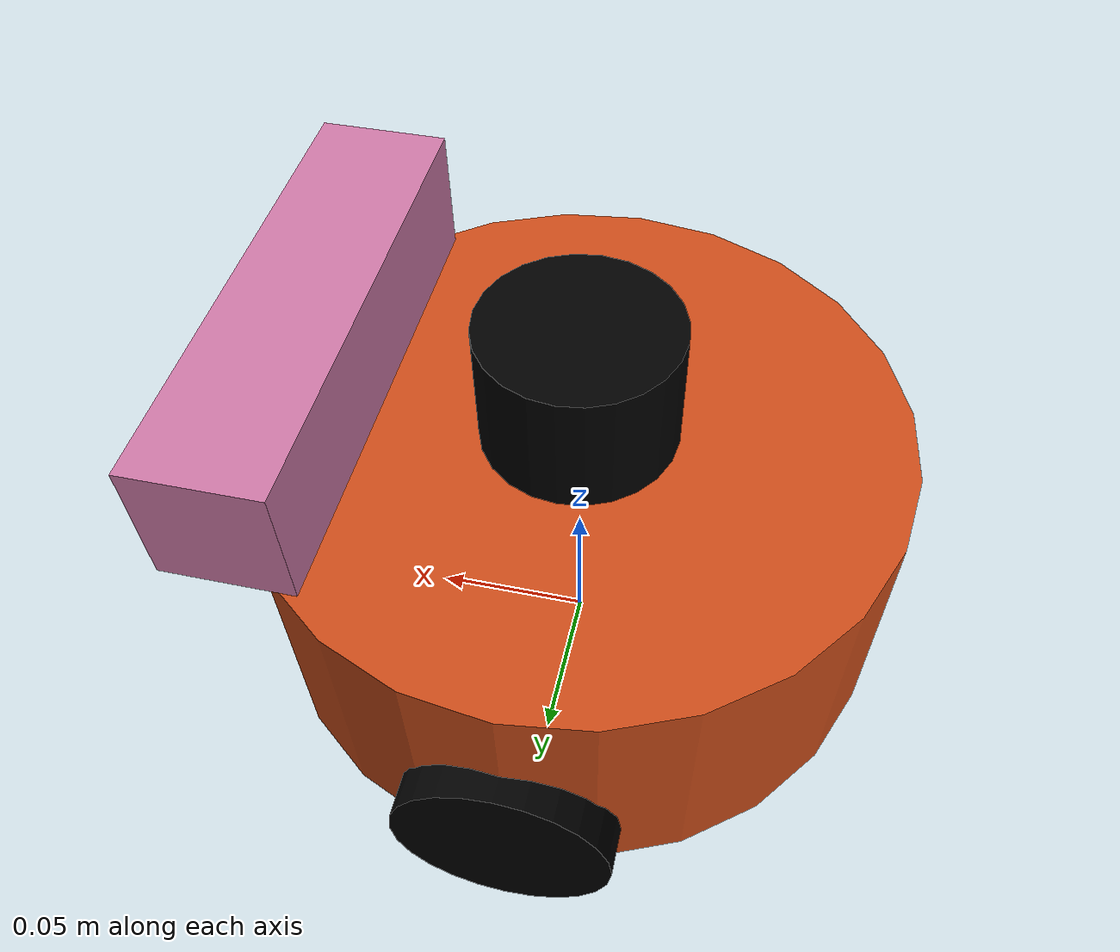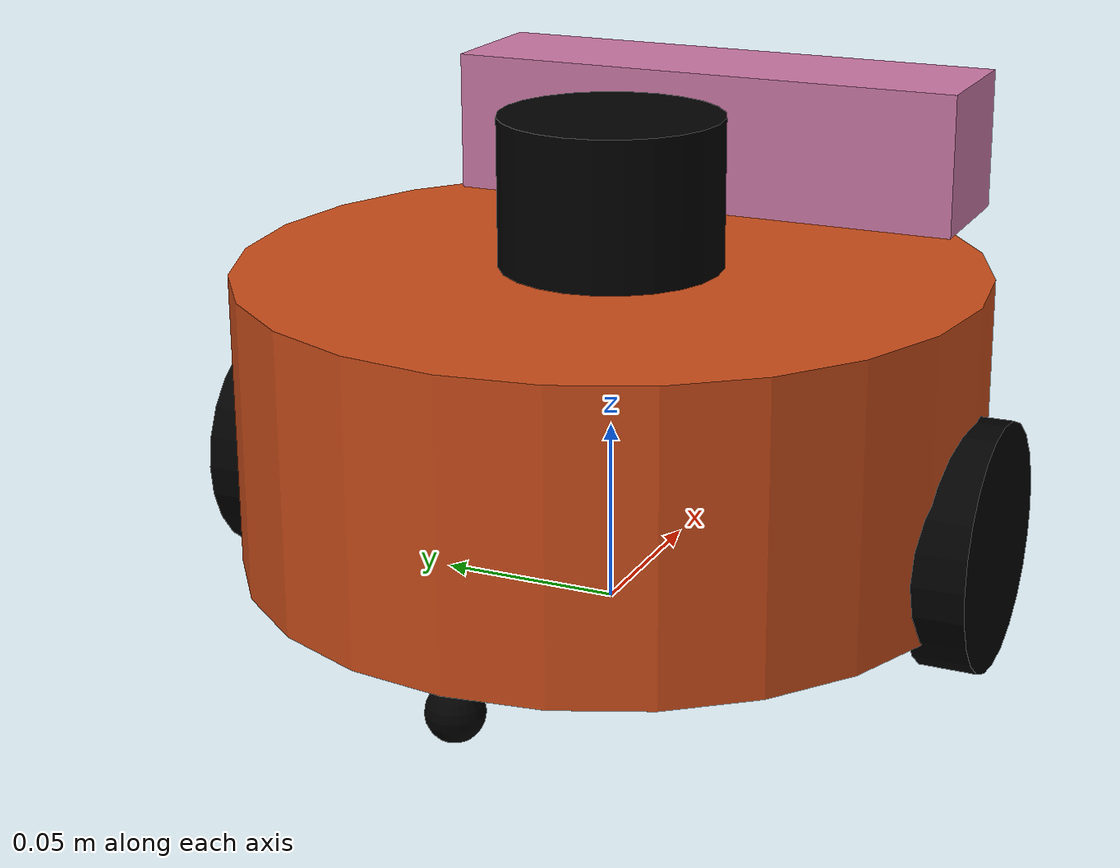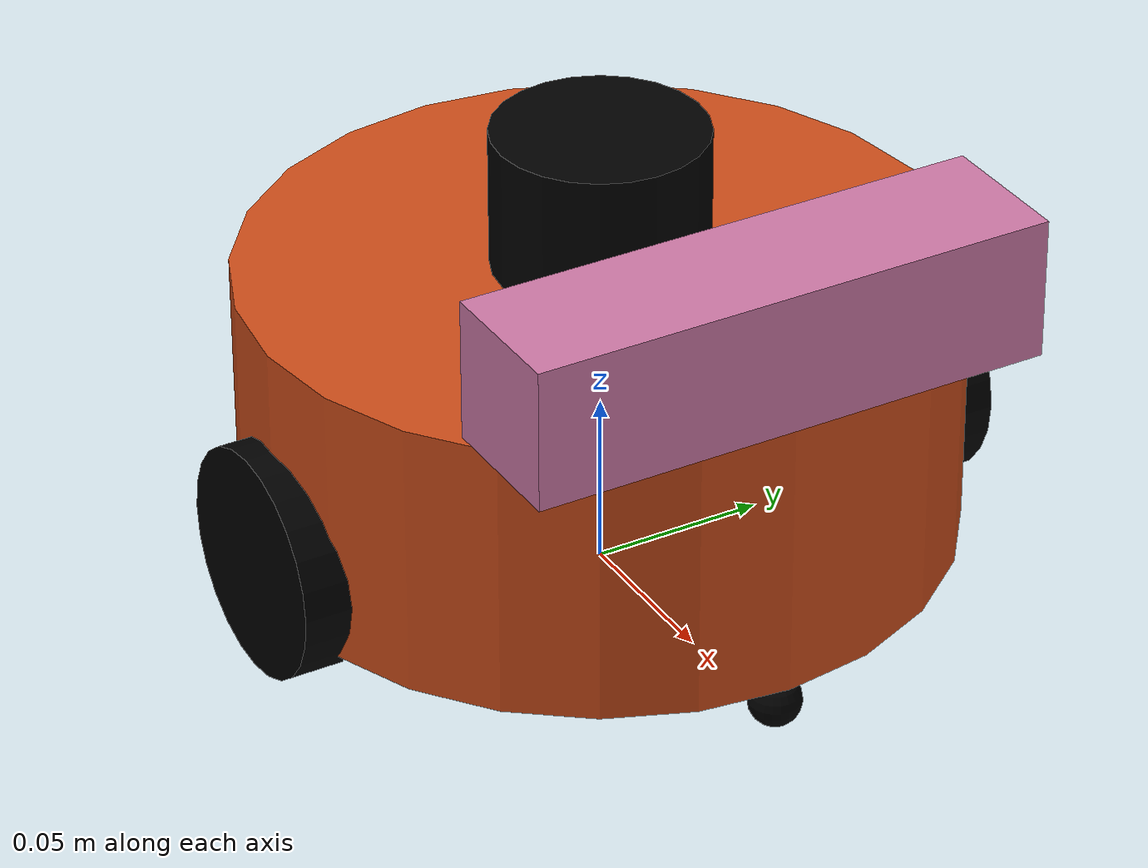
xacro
<?xml version="1.0"?>
<robot name="elementbot_2w_diff" xmlns:xacro="http://www.ros.org/wiki/xacro">

    <!-- Define materials -->
    <material name="brown">
        <color rgba="0.8 0.3 0.1 0.97" />
    </material>
    <material name="yellow">
        <color rgba="1.0 1.0 0.0 0.97" />
    </material>
    <material name="black">
        <color rgba="0.0 0.0 0.0 1.0" />
    </material>

    <!-- Define parameters -->
    <xacro:property name="base_radius" value="0.1"/>
    <xacro:property name="base_length" value="0.08"/>
    <xacro:property name="wheel_radius" value="0.0325"/>
    <xacro:property name="wheel_width" value="0.015"/>
    <xacro:property name="wheel_separation" value="0.1"/>
    <xacro:property name="wheel_offset" value="0.0225"/>
    <xacro:property name="caster_radius" value="0.0075"/>
    <xacro:property name="caster_offset" value="0.0925"/>
    <xacro:property name="caster_z_offset" value="0.0475"/>

    <xacro:property name="rgbd_offset_x" value="0.08" />
    <xacro:property name="rgbd_offset_y" value="0.0" />
    <xacro:property name="rgbd_offset_z" value="0.06" />

    <xacro:property name="laser_radius" value="0.03"/>
    <xacro:property name="laser_length" value="0.04"/>

    <!-- Base footprint -->
    <link name="base_footprint">
        <visual>
            <geometry>
                <sphere radius="0.001"/>
            </geometry>
        </visual>
    </link>

    <!-- Base link -->
    <link name="base_link">
        <visual>
            <geometry>
                <cylinder radius="${base_radius}" length="${base_length}"/>
            </geometry>
            <origin xyz="0.0 0.0 0.0"/>
            <material name="brown"/>
        </visual>
        <collision>
            <geometry>
                <cylinder radius="${base_radius}" length="${base_length}"/>
            </geometry>
            <origin xyz="0.0 0.0 0.0"/>
            <material name="brown"/>
        </collision>
        <inertial>
            <mass value="0.2"/>
            <inertia ixx="0.000190416666667" ixy="0" ixz="0" iyy="0.0001904" iyz="0" izz="0.00036"/>
        </inertial>
    </link>

    <!-- Joints -->
    <joint name="base_link2base_footprint" type="fixed">
        <parent link="base_footprint"/>
        <child link="base_link"/>
        <origin xyz="0.0 0.0 0.055"/>
    </joint>

    <!-- Left wheel -->
    <link name="left_wheel">
        <visual>
            <origin xyz="0.0 0.0 0.0" rpy="1.5705 0.0 0.0"/>
            <geometry>
                <cylinder radius="${wheel_radius}" length="${wheel_width}"/>
            </geometry>
            <material name="black"/>
        </visual>
        <collision>
            <origin xyz="0.0 0.0 0.0" rpy="1.5705 0.0 0.0"/>
            <geometry>
                <cylinder radius="${wheel_radius}" length="${wheel_width}"/>
            </geometry>
        </collision>
        <inertial>
            <mass value="0.2"/>
            <inertia ixx="0.000190416666667" ixy="0" ixz="0" iyy="0.0001904" iyz="0" izz="0.00036"/>
        </inertial>
    </link>

    <gazebo reference="left_wheel">
        <material>Gazebo/Black</material>
    </gazebo>

    <joint name="left_wheel2base_link" type="continuous">
        <parent link="base_link"/>
        <child link="left_wheel"/>
        <origin xyz="0 ${wheel_separation} -${wheel_offset}"/>
        <axis xyz="0 1 0"/>
    </joint>

    <!-- Right wheel -->
    <link name="right_wheel">
        <visual>
            <origin xyz="0 0 0" rpy="1.5705 0 0"/>
            <geometry>
                <cylinder radius="${wheel_radius}" length="${wheel_width}"/>
            </geometry>
            <material name="black"/>
        </visual>
        <collision>
            <origin xyz="0 0 0" rpy="1.5705 0 0"/>
            <geometry>
                <cylinder radius="${wheel_radius}" length="${wheel_width}"/>
            </geometry>
        </collision>
        <inertial>
            <mass value="0.2"/>
            <inertia ixx="0.000190416666667" ixy="0" ixz="0" iyy="0.0001904" iyz="0" izz="0.00036"/>
        </inertial>
    </link>

    <gazebo reference="right_wheel">
        <material>Gazebo/Black</material>
    </gazebo>

    <joint name="right_wheel2base_link" type="continuous">
        <parent link="base_link"/>
        <child link="right_wheel"/>
        <origin xyz="0 -${wheel_separation} -${wheel_offset}"/>
        <axis xyz="0 1 0"/>
    </joint>

    <!-- Front caster -->
    <link name="front_wheel">
        <visual>
            <origin xyz="0 0 0" rpy="0 0 0"/>
            <geometry>
                <sphere radius="${caster_radius}"/>
            </geometry>
            <material name="black"/>
        </visual>
        <collision>
            <origin xyz="0 0 0" rpy="0 0 0"/>
            <geometry>
                <sphere radius="${caster_radius}"/>
            </geometry>
        </collision>
        <inertial>
            <mass value="0.2"/>
            <inertia ixx="0.000190416666667" ixy="0" ixz="0" iyy="0.0001904" iyz="0" izz="0.00036"/>
        </inertial>
    </link>

    <gazebo reference="front_wheel">
        <material>Gazebo/Black</material>
    </gazebo>

    <joint name="front_wheel2base_link" type="fixed">
        <parent link="base_link"/>
        <child link="front_wheel"/>
        <origin xyz="${caster_offset} 0 -${caster_z_offset}"/>
        <axis xyz="1 1 1"/>
    </joint>

    <!-- Back caster -->
    <link name="back_wheel">
        <visual>
            <origin xyz="0 0 0" rpy="0 0 0"/>
            <geometry>
                <sphere radius="${caster_radius}"/>
            </geometry>
            <material name="black"/>
        </visual>
        <collision>
            <origin xyz="0 0 0" rpy="0 0 0"/>
            <geometry>
                <sphere radius="${caster_radius}"/>
            </geometry>
        </collision>
        <inertial>
            <mass value="0.2"/>
            <inertia ixx="0.000190416666667" ixy="0" ixz="0" iyy="0.0001904" iyz="0" izz="0.00036"/>
            <origin xyz="0 0 0" rpy="0 0 0"/>
        </inertial>
    </link>

    <gazebo reference="back_wheel">
        <material>Gazebo/Black</material>
    </gazebo>

    <joint name="back_wheel2base_link" type="fixed">
        <parent link="base_link"/>
        <child link="back_wheel"/>
        <origin xyz="-${caster_offset} 0 -${caster_z_offset}"/>
        <axis xyz="1 1 1"/>
    </joint>

    <!-- rgbd -->
    <xacro:include filename="$(find elementbot_gazebo)/urdf/sensors/rgbd_gazebo_harmonic.xacro" />

    <joint name="rgbd_joint" type="fixed">
        <origin xyz="${rgbd_offset_x} ${rgbd_offset_y} ${rgbd_offset_z}" rpy="0 0 0" />
        <parent link="base_link"/>
        <child link="rgbd_link"/>
    </joint>

    <xacro:rgbd_camera prefix="rgbd"/>

    <!-- lidar -->
    <xacro:include filename="$(find elementbot_gazebo)/urdf/sensors/lidar_gazebo_harmonic.xacro" />

    <xacro:property name="lidar_offset_x" value="0.0" />
    <xacro:property name="lidar_offset_y" value="0.0" />
    <xacro:property name="lidar_offset_z" value="0.06" />

    <joint name="lidar_joint" type="fixed">
        <origin xyz="${lidar_offset_x} ${lidar_offset_y} ${lidar_offset_z}" rpy="0 0 0" />
        <parent link="base_link"/>
        <child link="laser_link"/>
    </joint>

    <xacro:laser prefix="laser"/>

    <!-- controller -->
    <gazebo>
        <plugin filename="libignition-gazebo-diff-drive-system.so"
                name="ignition::gazebo::systems::DiffDrive">
                <update_rate>30</update_rate>
                <left_joint>left_wheel2base_link</left_joint>
                <right_joint>right_wheel2base_link</right_joint>
                <wheel_separation>0.2</wheel_separation>
                <wheel_radius>0.0325</wheel_radius>
                <topic>cmd_vel</topic>
                <publish_odom>true</publish_odom>
                <publish_odom_tf>true</publish_odom_tf>
                <publish_wheel_tf>true</publish_wheel_tf>
                <odometry_topic>odom</odometry_topic>
                <odometry_frame>odom</odometry_frame>
                <robot_base_frame>base_footprint</robot_base_frame>
        </plugin>
        <plugin
            filename="ignition-gazebo-sensors-system"
            name="ignition::gazebo::systems::Sensors">
            <render_engine>ogre2</render_engine>
        </plugin>
        <plugin
            filename="ignition-gazebo-user-commands-system"
            name="ignition::gazebo::systems::UserCommands">
        </plugin>
        <plugin
            filename="ignition-gazebo-scene-broadcaster-system"
            name="ignition::gazebo::systems::SceneBroadcaster">
        </plugin>
        <plugin
            filename="ignition-gazebo-joint-state-publisher-system"
            name="ignition::gazebo::systems::JointStatePublisher"/>
        <plugin
            filename="ignition-gazebo-odometry-publisher-system"
            name="ignition::gazebo::systems::OdometryPublisher">
            <odom_frame>odom</odom_frame>
            <robot_base_frame>base_footprint</robot_base_frame>
        </plugin>
    </gazebo>
</robot>

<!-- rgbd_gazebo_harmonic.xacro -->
<robot xmlns:xacro="http://www.ros.org/wiki/xacro" name="rgbd_camera">

    <xacro:property name="M_PI" value="3.1415926"/>

    <xacro:macro name="rgbd_camera" params="prefix:=camera">
        <!-- Create rgbd reference frame -->
        <!-- Add mesh for rgbd -->
        <link name="${prefix}_link">
            <origin xyz="0 0 0" rpy="0 0 0"/>
            <visual>
                <origin xyz="0 0 0" rpy="0 0 ${M_PI/2}"/>
                <geometry>
                    <box size="0.15 0.04 0.04" />
                </geometry>
            </visual>
            <collision>
                <geometry>
                    <box size="0.07 0.3 0.09"/>
                </geometry>
            </collision>
        </link>

        <joint name="${prefix}_optical_joint" type="fixed">
            <origin xyz="0 0 0" rpy="-1.5708 0 -1.5708"/>
            <parent link="${prefix}_link"/>
            <child link="${prefix}_frame_optical"/>
        </joint>

        <link name="${prefix}_frame_optical"/>

        <gazebo reference="${prefix}_link">
			<sensor name="rgbd_camera" type="rgbd_camera">
				<camera>
					<horizontal_fov>1.047</horizontal_fov>
					<image>
						<width>640</width>
						<height>480</height>
					</image>
					<clip>
						<near>0.1</near>
						<far>100</far>
					</clip>
				</camera>
				<always_on>1</always_on>
				<update_rate>20</update_rate>
				<visualize>true</visualize>
				<topic>rgbd_camera</topic>
				<enable_metrics>true</enable_metrics>
				<ignition_frame_id>${prefix}_link</ignition_frame_id>
			</sensor>
        </gazebo>

        <!-- 新增 RGB 相機插件 -->
        <plugin filename="libgazebo_ros_camera.so" name="rgb_plugin">
            <ros>
                <namespace>${prefix}</namespace>
            </ros>
            <camera_name>rgb</camera_name>
            <frame_name>${prefix}_optical_frame</frame_name>
        </plugin>

        <!-- 在深度插件中增加輸出格式校驗 -->
        <plugin filename="libgazebo_ros_depth_camera.so" name="depth_plugin">
            <ros>
                <namespace>${prefix}</namespace>
            </ros>
            <output_type>32FC1</output_type> <!-- 強制指定輸出格式 -->
            <min_depth>0.15</min_depth>      <!-- 最低有效深度 -->
            <max_depth>10.0</max_depth>      <!-- 最高有效深度 -->
            <clip>
                <near>0.15</near>            <!-- 需與 min_depth 一致 -->
                <far>10.0</far>              <!-- 需與 max_depth 一致 -->
            </clip>
        </plugin>

    </xacro:macro>
</robot>

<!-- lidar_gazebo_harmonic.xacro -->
<robot xmlns:xacro="http://www.ros.org/wiki/xacro" name="laser">

    <xacro:macro name="laser" params="prefix:=laser">
        <!-- Create laser reference frame -->
        <link name="${prefix}_link">
            <visual>
                <geometry>
                    <cylinder radius="${laser_radius}" length="${laser_length}"/>
                </geometry>
                <material name="black"/>
            </visual>
            <collision>
                <geometry>
                    <cylinder radius="${laser_radius}" length="${laser_length}"/>
                </geometry>
            </collision>
        </link>

        <gazebo reference="${prefix}_link">
            <sensor type="gpu_lidar" name="gpu_lidar">
				<topic>lidar</topic>
				<update_rate>20</update_rate>
				<ray>
					<scan>
						<horizontal>
							<samples>360</samples>
							<resolution>1</resolution>
							<min_angle>-3.14</min_angle>
							<max_angle>3.14</max_angle>
						</horizontal>
						<vertical>
							<samples>1</samples>
							<resolution>0.01</resolution>
							<min_angle>0</min_angle>
							<max_angle>0</max_angle>
						</vertical>
					</scan>
					<range>
						<min>0.08</min>
						<max>10.0</max>
						<resolution>0.01</resolution>
					</range>
				</ray>
				<alwaysOn>1</alwaysOn>
				<visualize>true</visualize>
				<ignition_frame_id>${prefix}_link</ignition_frame_id>
            </sensor>
        </gazebo>

    </xacro:macro>
</robot>
